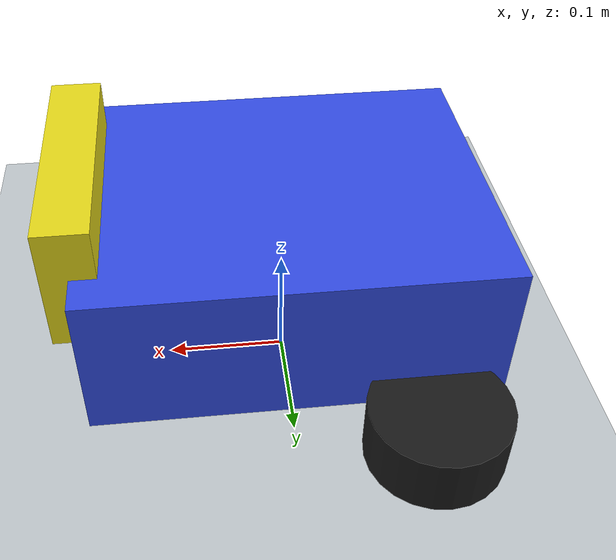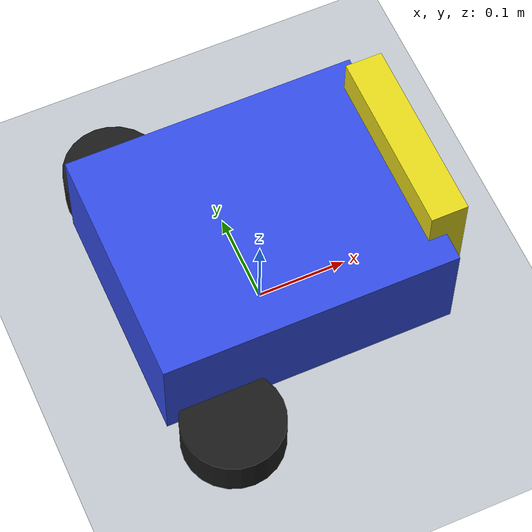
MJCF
<mujoco model="brainbot_diffdrive">
  <!--
    主动求知机器人 · 差速移动底盘 MJCF 定义
    兼容 URLab 的 MJCF 导入（Unreal Robotics Lab 可拖入 Content Browser 生成 Articulation BP）
    也兼容 MuJoCo 直接加载（src/simulation/mujoco_bridge.py）
  -->
  <compiler angle="radian" coordinate="local"/>
  <option timestep="0.01" gravity="0 0 -9.81"/>

  <default>
    <joint type="hinge" axis="0 1 0" damping="0.1"/>
    <geom type="cylinder" density="1000" friction="1.0 0.3 0.1"/>
    <motor ctrlrange="-5 5"/>
  </default>

  <worldbody>
    <light name="sun" pos="0 0 4" dir="0 0 -1" diffuse="0.9 0.9 0.9"/>
    <geom name="floor" type="plane" size="5 5 0.1" rgba="0.75 0.78 0.8 1"/>
    <camera name="top" pos="0 0 5" xyaxes="1 0 0 0 1 0" mode="fixed"/>

    <!-- 机器人底盘 -->
    <body name="chassis" pos="0 0 0.12">
      <freejoint name="root"/>
      <geom name="chassis_geom" type="box" size="0.16 0.13 0.06" mass="2.0" rgba="0.2 0.3 0.9 1"/>
      <body name="wheel_left" pos="-0.10 0.16 -0.06">
        <joint name="wheel_left_joint" type="hinge" axis="0 1 0"/>
        <geom name="wheel_left_geom" type="cylinder" size="0.055 0.025" rgba="0.1 0.1 0.1 1"/>
      </body>
      <body name="wheel_right" pos="-0.10 -0.16 -0.06">
        <joint name="wheel_right_joint" type="hinge" axis="0 1 0"/>
        <geom name="wheel_right_geom" type="cylinder" size="0.055 0.025" rgba="0.1 0.1 0.1 1"/>
      </body>
      <!-- 前方“感知头”（碰撞体，用于接近检测） -->
      <body name="head" pos="0.16 0 0.05">
        <geom name="head_geom" type="box" size="0.02 0.10 0.05" rgba="0.9 0.85 0.1 1"/>
      </body>
    </body>
  </worldbody>

  <actuator>
    <motor name="left_motor" joint="wheel_left_joint"/>
    <motor name="right_motor" joint="wheel_right_joint"/>
  </actuator>
</mujoco>
